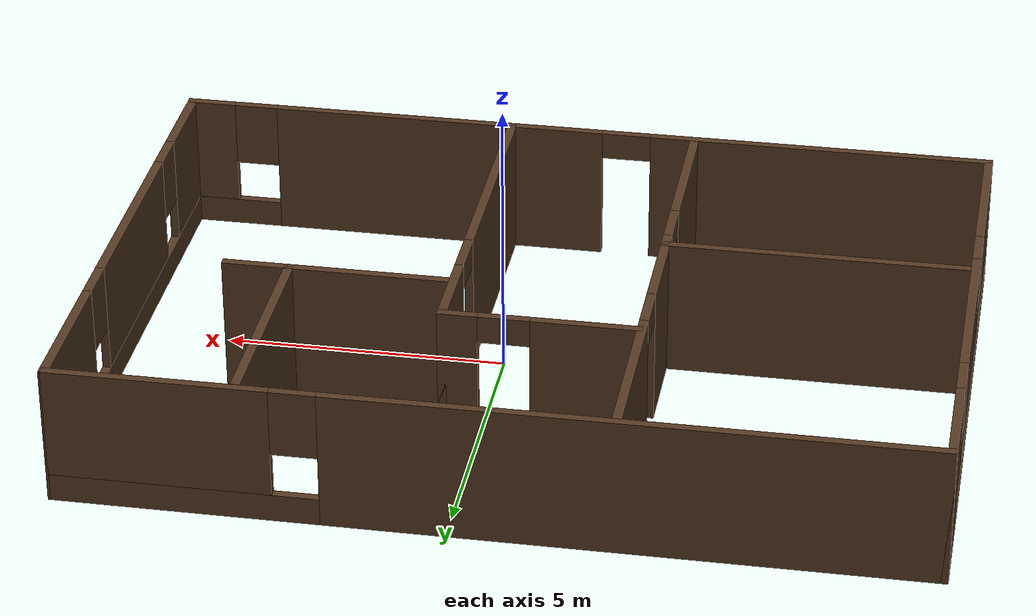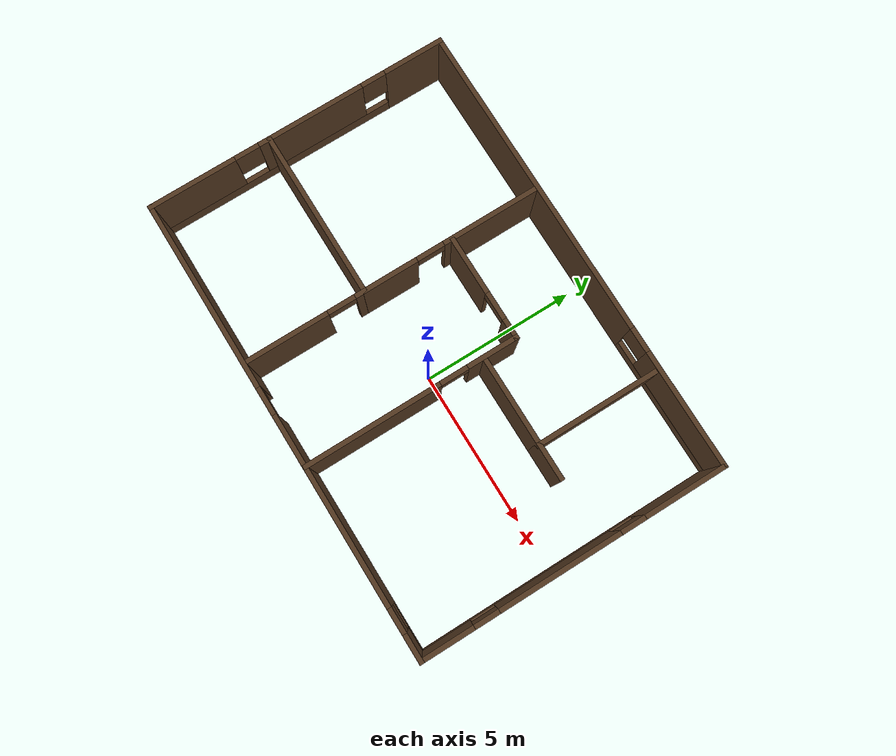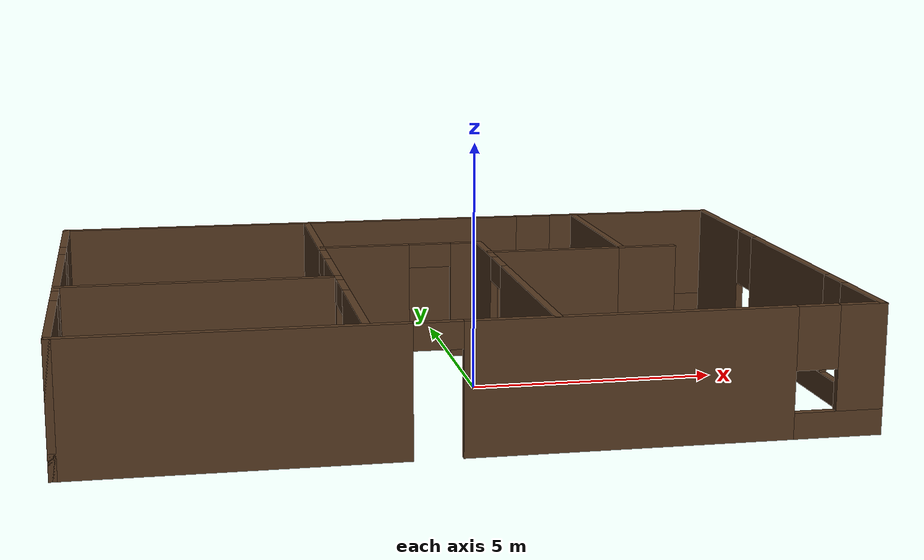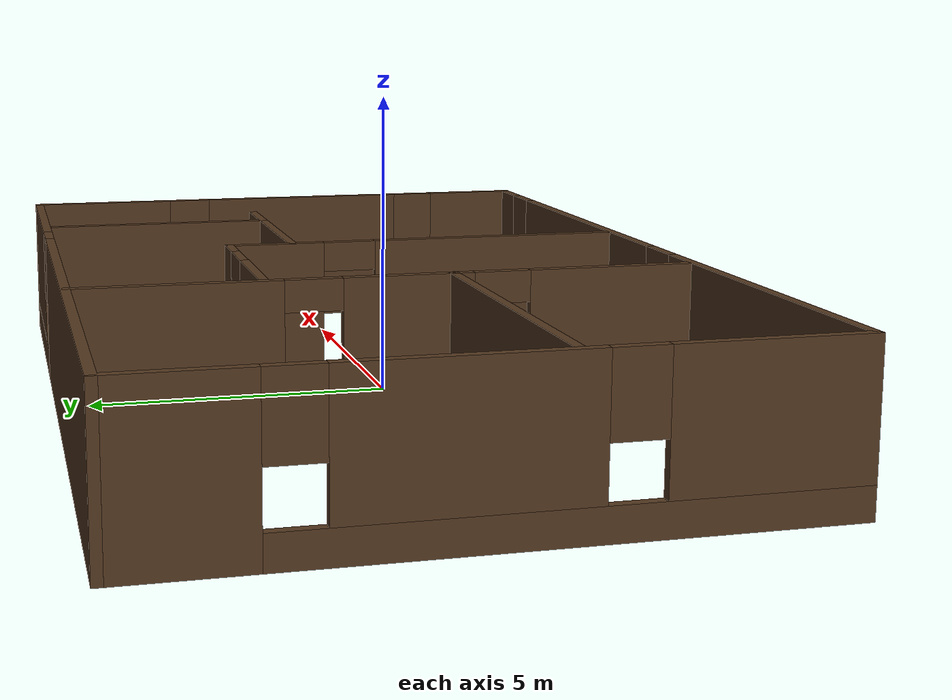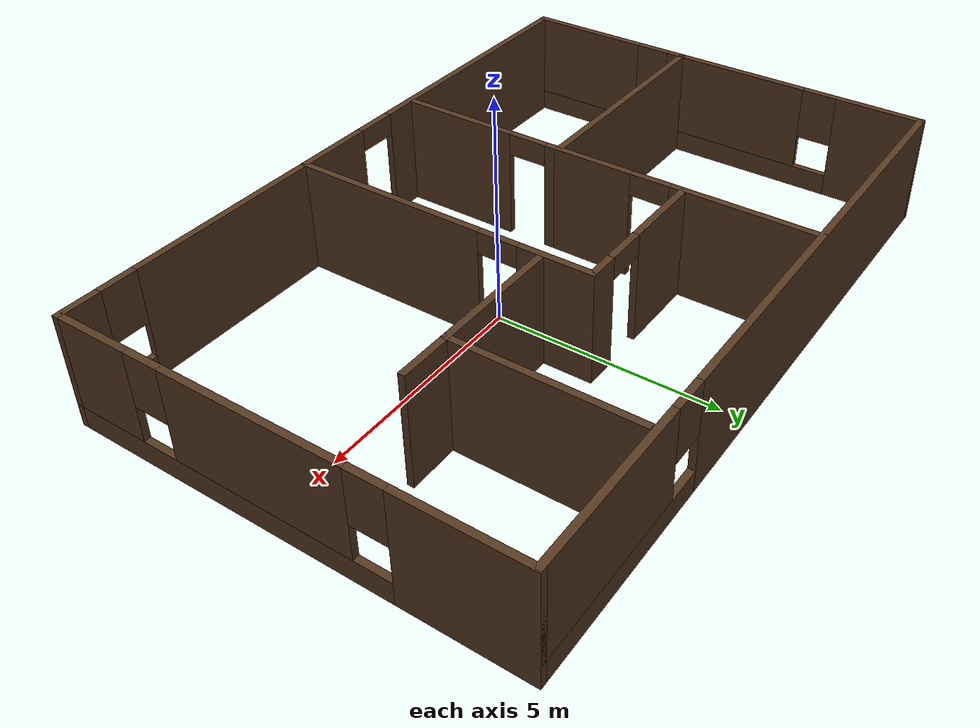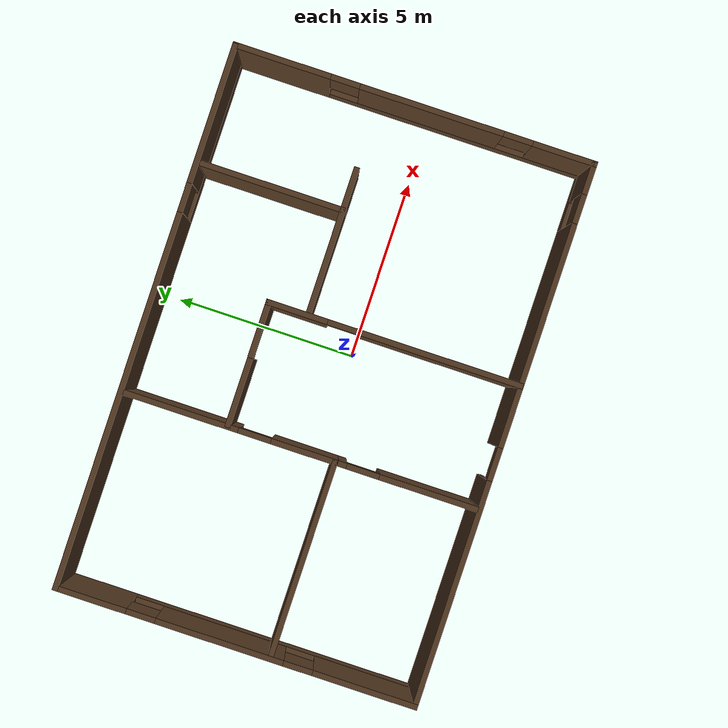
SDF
<?xml version='1.0'?>
<sdf version='1.6'>
  <model name='Building'>
    <pose frame=''>-0.744248 0.541627 0 0 -0 0</pose>
    <link name='Wall_0'>
      <pose frame=''>-0.015295 4.925 0 0 -0 0</pose>
      <visual name='Wall_0_Visual_0'>
        <pose frame=''>-2.31291 0 1.25 0 -0 0</pose>
        <geometry>
          <box>
            <size>10.3742 0.15 2.5</size>
          </box>
        </geometry>
        <material>
          <script>
            <uri>file://media/materials/scripts/gazebo.material</uri>
            <name>Gazebo/Grey</name>
          </script>
          <ambient>0.333333 0.223529 0.129412 1</ambient>
        </material>
      </visual>
      <collision name='Wall_0_Collision_0'>
        <geometry>
          <box>
            <size>10.3742 0.15 2.5</size>
          </box>
        </geometry>
        <pose frame=''>-2.31291 0 1.25 0 -0 0</pose>
      </collision>
      <visual name='Wall_0_Visual_1'>
        <pose frame=''>5.18709 0 0.25 0 -0 0</pose>
        <geometry>
          <box>
            <size>4.62583 0.15 0.5</size>
          </box>
        </geometry>
        <material>
          <script>
            <uri>file://media/materials/scripts/gazebo.material</uri>
            <name>Gazebo/Grey</name>
          </script>
          <ambient>0.333333 0.223529 0.129412 1</ambient>
        </material>
      </visual>
      <collision name='Wall_0_Collision_1'>
        <geometry>
          <box>
            <size>4.62583 0.15 0.5</size>
          </box>
        </geometry>
        <pose frame=''>5.18709 0 0.25 0 -0 0</pose>
      </collision>
      <visual name='Wall_0_Visual_2'>
        <pose frame=''>5.58709 0 1.5 0 -0 0</pose>
        <geometry>
          <box>
            <size>3.82583 0.15 2</size>
          </box>
        </geometry>
        <material>
          <script>
            <uri>file://media/materials/scripts/gazebo.material</uri>
            <name>Gazebo/Grey</name>
          </script>
          <ambient>0.333333 0.223529 0.129412 1</ambient>
        </material>
      </visual>
      <collision name='Wall_0_Collision_2'>
        <geometry>
          <box>
            <size>3.82583 0.15 2</size>
          </box>
        </geometry>
        <pose frame=''>5.58709 0 1.5 0 -0 0</pose>
      </collision>
      <visual name='Wall_0_Visual_3'>
        <pose frame=''>3.27417 0 1.9 0 -0 0</pose>
        <geometry>
          <box>
            <size>0.8 0.15 1.2</size>
          </box>
        </geometry>
        <material>
          <script>
            <uri>file://media/materials/scripts/gazebo.material</uri>
            <name>Gazebo/Grey</name>
          </script>
          <ambient>0.333333 0.223529 0.129412 1</ambient>
        </material>
      </visual>
      <collision name='Wall_0_Collision_3'>
        <geometry>
          <box>
            <size>0.8 0.15 1.2</size>
          </box>
        </geometry>
        <pose frame=''>3.27417 0 1.9 0 -0 0</pose>
      </collision>
    </link>
    <link name='Wall_1'>
      <pose frame=''>7.44029 0 0 0 0 -1.5708</pose>
      <visual name='Wall_1_Visual_0'>
        <pose frame=''>-3.6495 0 1.25 0 -0 0</pose>
        <geometry>
          <box>
            <size>2.701 0.15 2.5</size>
          </box>
        </geometry>
        <material>
          <script>
            <uri>file://media/materials/scripts/gazebo.material</uri>
            <name>Gazebo/Grey</name>
          </script>
          <ambient>0.333333 0.223529 0.129412 1</ambient>
        </material>
      </visual>
      <collision name='Wall_1_Collision_0'>
        <geometry>
          <box>
            <size>2.701 0.15 2.5</size>
          </box>
        </geometry>
        <pose frame=''>-3.6495 0 1.25 0 -0 0</pose>
      </collision>
      <visual name='Wall_1_Visual_1'>
        <pose frame=''>1.3505 0 0.25 0 -0 0</pose>
        <geometry>
          <box>
            <size>7.299 0.15 0.5</size>
          </box>
        </geometry>
        <material>
          <script>
            <uri>file://media/materials/scripts/gazebo.material</uri>
            <name>Gazebo/Grey</name>
          </script>
          <ambient>0.333333 0.223529 0.129412 1</ambient>
        </material>
      </visual>
      <collision name='Wall_1_Collision_1'>
        <geometry>
          <box>
            <size>7.299 0.15 0.5</size>
          </box>
        </geometry>
        <pose frame=''>1.3505 0 0.25 0 -0 0</pose>
      </collision>
      <visual name='Wall_1_Visual_2'>
        <pose frame=''>0.470903 0 1.5 0 -0 0</pose>
        <geometry>
          <box>
            <size>3.93981 0.15 2</size>
          </box>
        </geometry>
        <material>
          <script>
            <uri>file://media/materials/scripts/gazebo.material</uri>
            <name>Gazebo/Grey</name>
          </script>
          <ambient>0.333333 0.223529 0.129412 1</ambient>
        </material>
      </visual>
      <collision name='Wall_1_Collision_2'>
        <geometry>
          <box>
            <size>3.93981 0.15 2</size>
          </box>
        </geometry>
        <pose frame=''>0.470903 0 1.5 0 -0 0</pose>
      </collision>
      <visual name='Wall_1_Visual_3'>
        <pose frame=''>4.1204 0 1.5 0 -0 0</pose>
        <geometry>
          <box>
            <size>1.75919 0.15 2</size>
          </box>
        </geometry>
        <material>
          <script>
            <uri>file://media/materials/scripts/gazebo.material</uri>
            <name>Gazebo/Grey</name>
          </script>
          <ambient>0.333333 0.223529 0.129412 1</ambient>
        </material>
      </visual>
      <collision name='Wall_1_Collision_3'>
        <geometry>
          <box>
            <size>1.75919 0.15 2</size>
          </box>
        </geometry>
        <pose frame=''>4.1204 0 1.5 0 -0 0</pose>
      </collision>
      <visual name='Wall_1_Visual_4'>
        <pose frame=''>-1.899 0 1.9 0 -0 0</pose>
        <geometry>
          <box>
            <size>0.8 0.15 1.2</size>
          </box>
        </geometry>
        <material>
          <script>
            <uri>file://media/materials/scripts/gazebo.material</uri>
            <name>Gazebo/Grey</name>
          </script>
          <ambient>0.333333 0.223529 0.129412 1</ambient>
        </material>
      </visual>
      <collision name='Wall_1_Collision_4'>
        <geometry>
          <box>
            <size>0.8 0.15 1.2</size>
          </box>
        </geometry>
        <pose frame=''>-1.899 0 1.9 0 -0 0</pose>
      </collision>
      <visual name='Wall_1_Visual_5'>
        <pose frame=''>2.84081 0 1.9 0 -0 0</pose>
        <geometry>
          <box>
            <size>0.8 0.15 1.2</size>
          </box>
        </geometry>
        <material>
          <script>
            <uri>file://media/materials/scripts/gazebo.material</uri>
            <name>Gazebo/Grey</name>
          </script>
          <ambient>0.333333 0.223529 0.129412 1</ambient>
        </material>
      </visual>
      <collision name='Wall_1_Collision_5'>
        <geometry>
          <box>
            <size>0.8 0.15 1.2</size>
          </box>
        </geometry>
        <pose frame=''>2.84081 0 1.9 0 -0 0</pose>
      </collision>
    </link>
    <link name='Wall_13'>
      <pose frame=''>-2.05267 -2.87833 0 0 0 -1.5708</pose>
      <visual name='Wall_13_Visual_0'>
        <pose frame=''>-1.80512 0 1.25 0 -0 0</pose>
        <geometry>
          <box>
            <size>0.389756 0.15 2.5</size>
          </box>
        </geometry>
        <material>
          <script>
            <uri>file://media/materials/scripts/gazebo.material</uri>
            <name>Gazebo/Grey</name>
          </script>
          <ambient>0.333333 0.223529 0.129412 1</ambient>
        </material>
      </visual>
      <collision name='Wall_13_Collision_0'>
        <geometry>
          <box>
            <size>0.389756 0.15 2.5</size>
          </box>
        </geometry>
        <pose frame=''>-1.80512 0 1.25 0 -0 0</pose>
      </collision>
      <visual name='Wall_13_Visual_1'>
        <pose frame=''>0.644878 0 1.25 0 -0 0</pose>
        <geometry>
          <box>
            <size>2.71024 0.15 2.5</size>
          </box>
        </geometry>
        <material>
          <script>
            <uri>file://media/materials/scripts/gazebo.material</uri>
            <name>Gazebo/Grey</name>
          </script>
          <ambient>0.333333 0.223529 0.129412 1</ambient>
        </material>
      </visual>
      <collision name='Wall_13_Collision_1'>
        <geometry>
          <box>
            <size>2.71024 0.15 2.5</size>
          </box>
        </geometry>
        <pose frame=''>0.644878 0 1.25 0 -0 0</pose>
      </collision>
      <visual name='Wall_13_Visual_2'>
        <pose frame=''>-1.16024 0 2.25 0 -0 0</pose>
        <geometry>
          <box>
            <size>0.9 0.15 0.5</size>
          </box>
        </geometry>
        <material>
          <script>
            <uri>file://media/materials/scripts/gazebo.material</uri>
            <name>Gazebo/Grey</name>
          </script>
          <ambient>0.333333 0.223529 0.129412 1</ambient>
        </material>
      </visual>
      <collision name='Wall_13_Collision_2'>
        <geometry>
          <box>
            <size>0.9 0.15 0.5</size>
          </box>
        </geometry>
        <pose frame=''>-1.16024 0 2.25 0 -0 0</pose>
      </collision>
    </link>
    <link name='Wall_18'>
      <pose frame=''>1.35517 -1.45885 0 0 0 -1.5708</pose>
      <visual name='Wall_18_Visual_0'>
        <pose frame=''>-2.68037 0 1.25 0 -0 0</pose>
        <geometry>
          <box>
            <size>1.69281 0.15 2.5</size>
          </box>
        </geometry>
        <material>
          <script>
            <uri>file://media/materials/scripts/gazebo.material</uri>
            <name>Gazebo/Grey</name>
          </script>
          <ambient>0.333333 0.223529 0.129412 1</ambient>
        </material>
      </visual>
      <collision name='Wall_18_Collision_0'>
        <geometry>
          <box>
            <size>1.69281 0.15 2.5</size>
          </box>
        </geometry>
        <pose frame=''>-2.68037 0 1.25 0 -0 0</pose>
      </collision>
      <visual name='Wall_18_Visual_1'>
        <pose frame=''>1.29641 0 1.25 0 -0 0</pose>
        <geometry>
          <box>
            <size>4.46074 0.15 2.5</size>
          </box>
        </geometry>
        <material>
          <script>
            <uri>file://media/materials/scripts/gazebo.material</uri>
            <name>Gazebo/Grey</name>
          </script>
          <ambient>0.333333 0.223529 0.129412 1</ambient>
        </material>
      </visual>
      <collision name='Wall_18_Collision_1'>
        <geometry>
          <box>
            <size>4.46074 0.15 2.5</size>
          </box>
        </geometry>
        <pose frame=''>1.29641 0 1.25 0 -0 0</pose>
      </collision>
      <visual name='Wall_18_Visual_2'>
        <pose frame=''>-1.38396 0 2.25 0 -0 0</pose>
        <geometry>
          <box>
            <size>0.9 0.15 0.5</size>
          </box>
        </geometry>
        <material>
          <script>
            <uri>file://media/materials/scripts/gazebo.material</uri>
            <name>Gazebo/Grey</name>
          </script>
          <ambient>0.333333 0.223529 0.129412 1</ambient>
        </material>
      </visual>
      <collision name='Wall_18_Collision_2'>
        <geometry>
          <box>
            <size>0.9 0.15 0.5</size>
          </box>
        </geometry>
        <pose frame=''>-1.38396 0 2.25 0 -0 0</pose>
      </collision>
    </link>
    <link name='Wall_20'>
      <collision name='Wall_20_Collision'>
        <geometry>
          <box>
            <size>3 0.15 2.5</size>
          </box>
        </geometry>
        <pose frame=''>0 0 1.25 0 -0 0</pose>
      </collision>
      <visual name='Wall_20_Visual'>
        <pose frame=''>0 0 1.25 0 -0 0</pose>
        <geometry>
          <box>
            <size>3 0.15 2.5</size>
          </box>
        </geometry>
        <material>
          <script>
            <uri>file://media/materials/scripts/gazebo.material</uri>
            <name>Gazebo/Grey</name>
          </script>
          <ambient>0.333333 0.223529 0.129412 1</ambient>
        </material>
      </visual>
      <pose frame=''>2.81648 0.912675 0 0 -0 0</pose>
    </link>
    <link name='Wall_21'>
      <collision name='Wall_21_Collision'>
        <geometry>
          <box>
            <size>4 0.15 2.5</size>
          </box>
        </geometry>
        <pose frame=''>0 0 1.25 0 -0 0</pose>
      </collision>
      <visual name='Wall_21_Visual'>
        <pose frame=''>0 0 1.25 0 -0 0</pose>
        <geometry>
          <box>
            <size>4 0.15 2.5</size>
          </box>
        </geometry>
        <material>
          <script>
            <uri>file://media/materials/scripts/gazebo.material</uri>
            <name>Gazebo/Grey</name>
          </script>
          <ambient>0.333333 0.223529 0.129412 1</ambient>
        </material>
      </visual>
      <pose frame=''>4.24148 2.83768 0 0 -0 1.5708</pose>
    </link>
    <link name='Wall_23'>
      <collision name='Wall_23_Collision'>
        <geometry>
          <box>
            <size>1.25 0.15 2.5</size>
          </box>
        </geometry>
        <pose frame=''>0 0 1.25 0 -0 0</pose>
      </collision>
      <visual name='Wall_23_Visual'>
        <pose frame=''>0 0 1.25 0 -0 0</pose>
        <geometry>
          <box>
            <size>1.25 0.15 2.5</size>
          </box>
        </geometry>
        <material>
          <script>
            <uri>file://media/materials/scripts/gazebo.material</uri>
            <name>Gazebo/Grey</name>
          </script>
          <ambient>0.333333 0.223529 0.129412 1</ambient>
        </material>
      </visual>
      <pose frame=''>4.79148 0.912675 0 0 -0 0</pose>
    </link>
    <link name='Wall_25'>
      <pose frame=''>-0.319831 1.99293 0 0 -0 3.14159</pose>
      <visual name='Wall_25_Visual_0'>
        <pose frame=''>-1.40083 0 1.25 0 -0 0</pose>
        <geometry>
          <box>
            <size>0.698335 0.15 2.5</size>
          </box>
        </geometry>
        <material>
          <script>
            <uri>file://media/materials/scripts/gazebo.material</uri>
            <name>Gazebo/Grey</name>
          </script>
          <ambient>0.333333 0.223529 0.129412 1</ambient>
        </material>
      </visual>
      <collision name='Wall_25_Collision_0'>
        <geometry>
          <box>
            <size>0.698335 0.15 2.5</size>
          </box>
        </geometry>
        <pose frame=''>-1.40083 0 1.25 0 -0 0</pose>
      </collision>
      <visual name='Wall_25_Visual_1'>
        <pose frame=''>0.799167 0 1.25 0 -0 0</pose>
        <geometry>
          <box>
            <size>1.90166 0.15 2.5</size>
          </box>
        </geometry>
        <material>
          <script>
            <uri>file://media/materials/scripts/gazebo.material</uri>
            <name>Gazebo/Grey</name>
          </script>
          <ambient>0.333333 0.223529 0.129412 1</ambient>
        </material>
      </visual>
      <collision name='Wall_25_Collision_1'>
        <geometry>
          <box>
            <size>1.90166 0.15 2.5</size>
          </box>
        </geometry>
        <pose frame=''>0.799167 0 1.25 0 -0 0</pose>
      </collision>
      <visual name='Wall_25_Visual_2'>
        <pose frame=''>-0.601665 0 2.25 0 -0 0</pose>
        <geometry>
          <box>
            <size>0.9 0.15 0.5</size>
          </box>
        </geometry>
        <material>
          <script>
            <uri>file://media/materials/scripts/gazebo.material</uri>
            <name>Gazebo/Grey</name>
          </script>
          <ambient>0.333333 0.223529 0.129412 1</ambient>
        </material>
      </visual>
      <collision name='Wall_25_Collision_2'>
        <geometry>
          <box>
            <size>0.9 0.15 0.5</size>
          </box>
        </geometry>
        <pose frame=''>-0.601665 0 2.25 0 -0 0</pose>
      </collision>
    </link>
    <link name='Wall_3'>
      <pose frame=''>-7.44029 0 0 0 0 -1.5708</pose>
      <visual name='Wall_3_Visual_0'>
        <pose frame=''>-3.99757 0 1.25 0 -0 0</pose>
        <geometry>
          <box>
            <size>2.00486 0.15 2.5</size>
          </box>
        </geometry>
        <material>
          <script>
            <uri>file://media/materials/scripts/gazebo.material</uri>
            <name>Gazebo/Grey</name>
          </script>
          <ambient>0.333333 0.223529 0.129412 1</ambient>
        </material>
      </visual>
      <collision name='Wall_3_Collision_0'>
        <geometry>
          <box>
            <size>2.00486 0.15 2.5</size>
          </box>
        </geometry>
        <pose frame=''>-3.99757 0 1.25 0 -0 0</pose>
      </collision>
      <visual name='Wall_3_Visual_1'>
        <pose frame=''>1.00243 0 0.25 0 -0 0</pose>
        <geometry>
          <box>
            <size>7.99514 0.15 0.5</size>
          </box>
        </geometry>
        <material>
          <script>
            <uri>file://media/materials/scripts/gazebo.material</uri>
            <name>Gazebo/Grey</name>
          </script>
          <ambient>0.333333 0.223529 0.129412 1</ambient>
        </material>
      </visual>
      <collision name='Wall_3_Collision_1'>
        <geometry>
          <box>
            <size>7.99514 0.15 0.5</size>
          </box>
        </geometry>
        <pose frame=''>1.00243 0 0.25 0 -0 0</pose>
      </collision>
      <visual name='Wall_3_Visual_2'>
        <pose frame=''>-0.438527 0 1.5 0 -0 0</pose>
        <geometry>
          <box>
            <size>3.51322 0.15 2</size>
          </box>
        </geometry>
        <material>
          <script>
            <uri>file://media/materials/scripts/gazebo.material</uri>
            <name>Gazebo/Grey</name>
          </script>
          <ambient>0.333333 0.223529 0.129412 1</ambient>
        </material>
      </visual>
      <collision name='Wall_3_Collision_2'>
        <geometry>
          <box>
            <size>3.51322 0.15 2</size>
          </box>
        </geometry>
        <pose frame=''>-0.438527 0 1.5 0 -0 0</pose>
      </collision>
      <visual name='Wall_3_Visual_3'>
        <pose frame=''>3.55904 0 1.5 0 -0 0</pose>
        <geometry>
          <box>
            <size>2.88192 0.15 2</size>
          </box>
        </geometry>
        <material>
          <script>
            <uri>file://media/materials/scripts/gazebo.material</uri>
            <name>Gazebo/Grey</name>
          </script>
          <ambient>0.333333 0.223529 0.129412 1</ambient>
        </material>
      </visual>
      <collision name='Wall_3_Collision_3'>
        <geometry>
          <box>
            <size>2.88192 0.15 2</size>
          </box>
        </geometry>
        <pose frame=''>3.55904 0 1.5 0 -0 0</pose>
      </collision>
      <visual name='Wall_3_Visual_4'>
        <pose frame=''>-2.59514 0 1.9 0 -0 0</pose>
        <geometry>
          <box>
            <size>0.8 0.15 1.2</size>
          </box>
        </geometry>
        <material>
          <script>
            <uri>file://media/materials/scripts/gazebo.material</uri>
            <name>Gazebo/Grey</name>
          </script>
          <ambient>0.333333 0.223529 0.129412 1</ambient>
        </material>
      </visual>
      <collision name='Wall_3_Collision_4'>
        <geometry>
          <box>
            <size>0.8 0.15 1.2</size>
          </box>
        </geometry>
        <pose frame=''>-2.59514 0 1.9 0 -0 0</pose>
      </collision>
      <visual name='Wall_3_Visual_5'>
        <pose frame=''>1.71808 0 1.9 0 -0 0</pose>
        <geometry>
          <box>
            <size>0.8 0.15 1.2</size>
          </box>
        </geometry>
        <material>
          <script>
            <uri>file://media/materials/scripts/gazebo.material</uri>
            <name>Gazebo/Grey</name>
          </script>
          <ambient>0.333333 0.223529 0.129412 1</ambient>
        </material>
      </visual>
      <collision name='Wall_3_Collision_5'>
        <geometry>
          <box>
            <size>0.8 0.15 1.2</size>
          </box>
        </geometry>
        <pose frame=''>1.71808 0 1.9 0 -0 0</pose>
      </collision>
    </link>
    <link name='Wall_4'>
      <pose frame=''>0 -4.925 0 0 -0 0</pose>
      <visual name='Wall_4_Visual_0'>
        <pose frame=''>-4.38024 0 1.25 0 -0 0</pose>
        <geometry>
          <box>
            <size>6.27012 0.15 2.5</size>
          </box>
        </geometry>
        <material>
          <script>
            <uri>file://media/materials/scripts/gazebo.material</uri>
            <name>Gazebo/Grey</name>
          </script>
          <ambient>0.333333 0.223529 0.129412 1</ambient>
        </material>
      </visual>
      <collision name='Wall_4_Collision_0'>
        <geometry>
          <box>
            <size>6.27012 0.15 2.5</size>
          </box>
        </geometry>
        <pose frame=''>-4.38024 0 1.25 0 -0 0</pose>
      </collision>
      <visual name='Wall_4_Visual_1'>
        <pose frame=''>2.72981 0 1.25 0 -0 0</pose>
        <geometry>
          <box>
            <size>6.14998 0.15 2.5</size>
          </box>
        </geometry>
        <material>
          <script>
            <uri>file://media/materials/scripts/gazebo.material</uri>
            <name>Gazebo/Grey</name>
          </script>
          <ambient>0.333333 0.223529 0.129412 1</ambient>
        </material>
      </visual>
      <collision name='Wall_4_Collision_1'>
        <geometry>
          <box>
            <size>6.14998 0.15 2.5</size>
          </box>
        </geometry>
        <pose frame=''>2.72981 0 1.25 0 -0 0</pose>
      </collision>
      <visual name='Wall_4_Visual_2'>
        <pose frame=''>6.66005 0 0.25 0 -0 0</pose>
        <geometry>
          <box>
            <size>1.71049 0.15 0.5</size>
          </box>
        </geometry>
        <material>
          <script>
            <uri>file://media/materials/scripts/gazebo.material</uri>
            <name>Gazebo/Grey</name>
          </script>
          <ambient>0.333333 0.223529 0.129412 1</ambient>
        </material>
      </visual>
      <collision name='Wall_4_Collision_2'>
        <geometry>
          <box>
            <size>1.71049 0.15 0.5</size>
          </box>
        </geometry>
        <pose frame=''>6.66005 0 0.25 0 -0 0</pose>
      </collision>
      <visual name='Wall_4_Visual_3'>
        <pose frame=''>7.06005 0 1.5 0 -0 0</pose>
        <geometry>
          <box>
            <size>0.910491 0.15 2</size>
          </box>
        </geometry>
        <material>
          <script>
            <uri>file://media/materials/scripts/gazebo.material</uri>
            <name>Gazebo/Grey</name>
          </script>
          <ambient>0.333333 0.223529 0.129412 1</ambient>
        </material>
      </visual>
      <collision name='Wall_4_Collision_3'>
        <geometry>
          <box>
            <size>0.910491 0.15 2</size>
          </box>
        </geometry>
        <pose frame=''>7.06005 0 1.5 0 -0 0</pose>
      </collision>
      <visual name='Wall_4_Visual_4'>
        <pose frame=''>6.2048 0 1.9 0 -0 0</pose>
        <geometry>
          <box>
            <size>0.8 0.15 1.2</size>
          </box>
        </geometry>
        <material>
          <script>
            <uri>file://media/materials/scripts/gazebo.material</uri>
            <name>Gazebo/Grey</name>
          </script>
          <ambient>0.333333 0.223529 0.129412 1</ambient>
        </material>
      </visual>
      <collision name='Wall_4_Collision_4'>
        <geometry>
          <box>
            <size>0.8 0.15 1.2</size>
          </box>
        </geometry>
        <pose frame=''>6.2048 0 1.9 0 -0 0</pose>
      </collision>
      <visual name='Wall_4_Visual_5'>
        <pose frame=''>-0.795178 0 2.25 0 -0 0</pose>
        <geometry>
          <box>
            <size>0.9 0.15 0.5</size>
          </box>
        </geometry>
        <material>
          <script>
            <uri>file://media/materials/scripts/gazebo.material</uri>
            <name>Gazebo/Grey</name>
          </script>
          <ambient>0.333333 0.223529 0.129412 1</ambient>
        </material>
      </visual>
      <collision name='Wall_4_Collision_5'>
        <geometry>
          <box>
            <size>0.9 0.15 0.5</size>
          </box>
        </geometry>
        <pose frame=''>-0.795178 0 2.25 0 -0 0</pose>
      </collision>
    </link>
    <link name='Wall_6'>
      <collision name='Wall_6_Collision'>
        <geometry>
          <box>
            <size>5.5 0.15 2.5</size>
          </box>
        </geometry>
        <pose frame=''>0 0 1.25 0 -0 0</pose>
      </collision>
      <visual name='Wall_6_Visual'>
        <pose frame=''>0 0 1.25 0 -0 0</pose>
        <geometry>
          <box>
            <size>5.5 0.15 2.5</size>
          </box>
        </geometry>
        <material>
          <script>
            <uri>file://media/materials/scripts/gazebo.material</uri>
            <name>Gazebo/Grey</name>
          </script>
          <ambient>0.333333 0.223529 0.129412 1</ambient>
        </material>
      </visual>
      <pose frame=''>-4.72767 -0.953328 0 0 -0 0</pose>
    </link>
    <link name='Wall_7'>
      <pose frame=''>-2.05267 1.97167 0 0 -0 1.5708</pose>
      <visual name='Wall_7_Visual_0'>
        <pose frame=''>-2.0849 0 1.25 0 -0 0</pose>
        <geometry>
          <box>
            <size>1.8302 0.15 2.5</size>
          </box>
        </geometry>
        <material>
          <script>
            <uri>file://media/materials/scripts/gazebo.material</uri>
            <name>Gazebo/Grey</name>
          </script>
          <ambient>0.333333 0.223529 0.129412 1</ambient>
        </material>
      </visual>
      <collision name='Wall_7_Collision_0'>
        <geometry>
          <box>
            <size>1.8302 0.15 2.5</size>
          </box>
        </geometry>
        <pose frame=''>-2.0849 0 1.25 0 -0 0</pose>
      </collision>
      <visual name='Wall_7_Visual_1'>
        <pose frame=''>1.3651 0 1.25 0 -0 0</pose>
        <geometry>
          <box>
            <size>3.2698 0.15 2.5</size>
          </box>
        </geometry>
        <material>
          <script>
            <uri>file://media/materials/scripts/gazebo.material</uri>
            <name>Gazebo/Grey</name>
          </script>
          <ambient>0.333333 0.223529 0.129412 1</ambient>
        </material>
      </visual>
      <collision name='Wall_7_Collision_1'>
        <geometry>
          <box>
            <size>3.2698 0.15 2.5</size>
          </box>
        </geometry>
        <pose frame=''>1.3651 0 1.25 0 -0 0</pose>
      </collision>
      <visual name='Wall_7_Visual_2'>
        <pose frame=''>-0.719803 0 2.25 0 -0 0</pose>
        <geometry>
          <box>
            <size>0.9 0.15 0.5</size>
          </box>
        </geometry>
        <material>
          <script>
            <uri>file://media/materials/scripts/gazebo.material</uri>
            <name>Gazebo/Grey</name>
          </script>
          <ambient>0.333333 0.223529 0.129412 1</ambient>
        </material>
      </visual>
      <collision name='Wall_7_Collision_2'>
        <geometry>
          <box>
            <size>0.9 0.15 0.5</size>
          </box>
        </geometry>
        <pose frame=''>-0.719803 0 2.25 0 -0 0</pose>
      </collision>
    </link>
    <static>1</static>
  </model>
</sdf>
